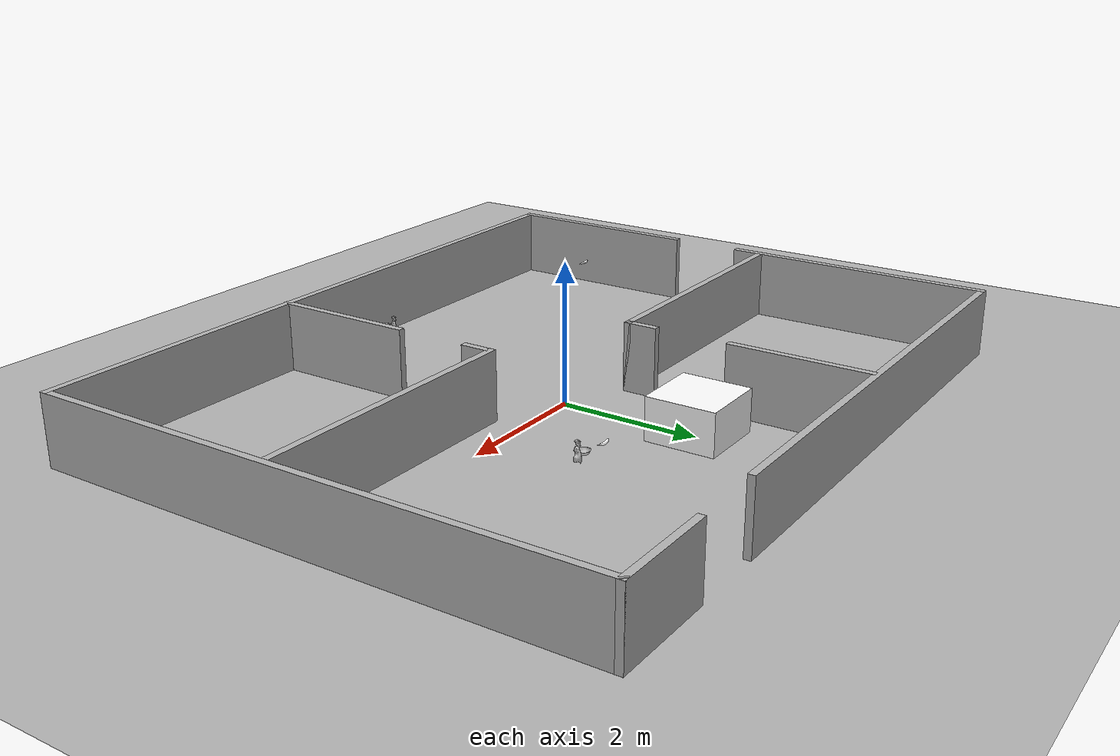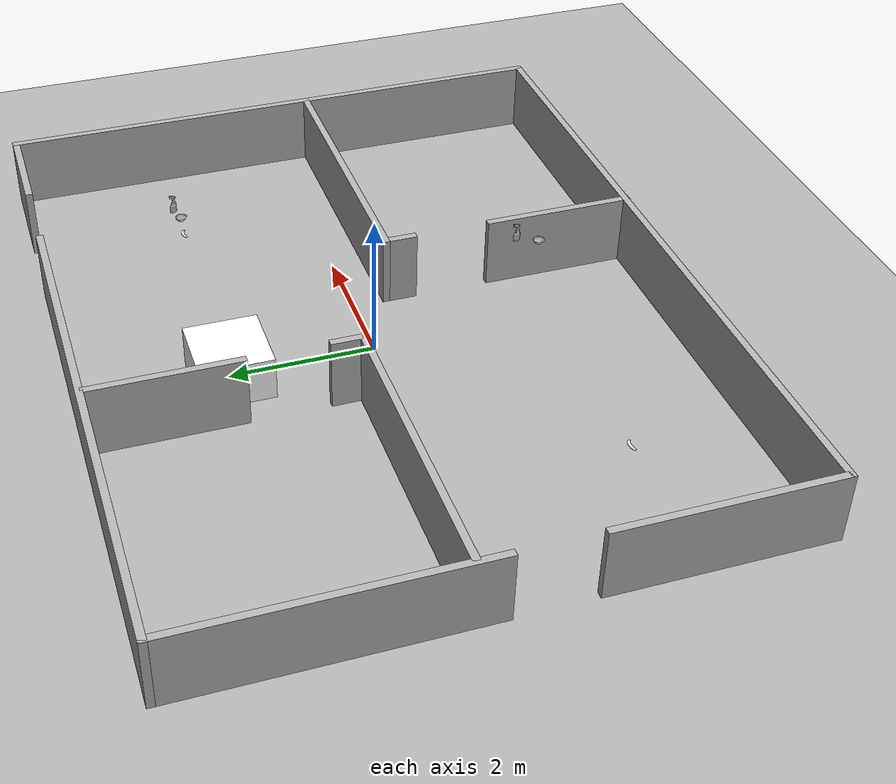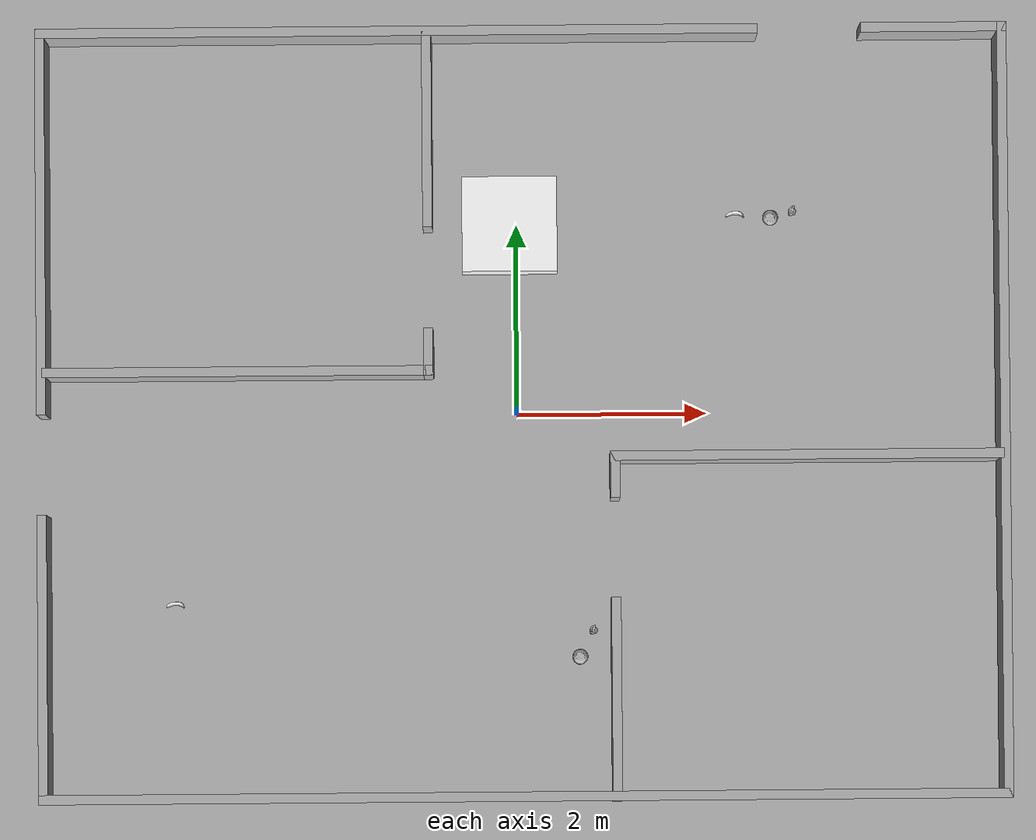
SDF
<sdf version="1.8">
 <world name="robocup_home_official">
  <physics name="1ms" type="ignored">
   <max_step_size>0.001</max_step_size>
   <real_time_factor>1.0</real_time_factor>
  </physics>
  <plugin filename="ignition-gazebo-physics-system" name="gz::sim::systems::Physics"/>
  <plugin filename="ignition-gazebo-user-commands-system" name="gz::sim::systems::UserCommands"/>
  <plugin filename="ignition-gazebo-scene-broadcaster-system" name="gz::sim::systems::SceneBroadcaster"/>
  <plugin filename="ignition-gazebo-sensors-system" name="gz::sim::systems::Sensors">
   <render_engine>ogre2</render_engine>
  </plugin>
  <gravity>0 0 -9.81</gravity>
  <scene>
   <ambient>0.4 0.4 0.4 1</ambient>
   <background>0.92 0.92 0.92 1</background>
   <shadows>true</shadows>
  </scene>
  <light name="sun" type="directional">
   <pose>0 0 8 0 0 0</pose>
   <diffuse>0.7 0.7 0.7 1</diffuse>
   <specular>0.2 0.2 0.2 1</specular>
   <direction>-0.4 0.2 -1</direction>
  </light>
  <model name="ground_plane">
   <static>true</static>
   <link name="link">
    <collision name="collision">
     <geometry><plane><normal>0 0 1</normal><size>100 100</size></plane></geometry>
     <surface><friction><ode><mu>100</mu><mu2>50</mu2></ode></friction></surface>
    </collision>
    <visual name="visual">
     <cast_shadows>false</cast_shadows>
     <geometry><plane><normal>0 0 1</normal><size>100 100</size></plane></geometry>
     <material>
      <ambient>0.3 0.3 0.3 1</ambient>
      <diffuse>0.7 0.7 0.7 1</diffuse>
      <specular>0.01 0.01 0.01 1</specular>
     </material>
    </visual>
   </link>
  </model>
  <model name="RoboCup_Home">
   <static>true</static>
   <pose>0.0595 -0.023998 0 0 0 0</pose>
   <link name="Wall_10">
    <pose>5.0505 0.004498 0 0 0 1.5708</pose>
    <collision name="Wall_10_Collision">
     <pose>0 0 0.5 0 0 0</pose>
     <geometry><box><size>8.139 0.1 1</size></box></geometry>
    </collision>
    <visual name="Wall_10_Visual">
     <pose>0 0 0.5 0 0 0</pose>
     <geometry><box><size>8.139 0.1 1</size></box></geometry>
     <material>
      <ambient>0.3 0.3 0.3 1</ambient>
      <diffuse>0.7 0.7 0.7 1</diffuse>
      <specular>0.01 0.01 0.01 1</specular>
     </material>
    </visual>
   </link>
   <link name="Wall_16">
    <pose>-5.0505 -2.5495 0 0 0 1.5708</pose>
    <collision name="Wall_16_Collision">
     <pose>0 0 0.5 0 0 0</pose>
     <geometry><box><size>3.03123 0.1 1</size></box></geometry>
    </collision>
    <visual name="Wall_16_Visual">
     <pose>0 0 0.5 0 0 0</pose>
     <geometry><box><size>3.03123 0.1 1</size></box></geometry>
     <material>
      <ambient>0.3 0.3 0.3 1</ambient>
      <diffuse>0.7 0.7 0.7 1</diffuse>
      <specular>0.01 0.01 0.01 1</specular>
     </material>
    </visual>
   </link>
   <link name="Wall_18">
    <pose>-5.0505 2.045 0 0 0 -1.5708</pose>
    <collision name="Wall_18_Collision">
     <pose>0 0 0.5 0 0 0</pose>
     <geometry><box><size>4.05777 0.1 1</size></box></geometry>
    </collision>
    <visual name="Wall_18_Visual">
     <pose>0 0 0.5 0 0 0</pose>
     <geometry><box><size>4.05777 0.1 1</size></box></geometry>
     <material>
      <ambient>0.3 0.3 0.3 1</ambient>
      <diffuse>0.7 0.7 0.7 1</diffuse>
      <specular>0.01 0.01 0.01 1</specular>
     </material>
    </visual>
   </link>
   <link name="Wall_20">
    <pose>-1.305 4.024 0 0 0 0</pose>
    <collision name="Wall_20_Collision">
     <pose>0 0 0.5 0 0 0</pose>
     <geometry><box><size>7.591 0.1 1</size></box></geometry>
    </collision>
    <visual name="Wall_20_Visual">
     <pose>0 0 0.5 0 0 0</pose>
     <geometry><box><size>7.591 0.1 1</size></box></geometry>
     <material>
      <ambient>0.3 0.3 0.3 1</ambient>
      <diffuse>0.7 0.7 0.7 1</diffuse>
      <specular>0.01 0.01 0.01 1</specular>
     </material>
    </visual>
   </link>
   <link name="Wall_23">
    <pose>4.3355 4.024 0 0 0 3.14159</pose>
    <collision name="Wall_23_Collision">
     <pose>0 0 0.5 0 0 0</pose>
     <geometry><box><size>1.53 0.1 1</size></box></geometry>
    </collision>
    <visual name="Wall_23_Visual">
     <pose>0 0 0.5 0 0 0</pose>
     <geometry><box><size>1.53 0.1 1</size></box></geometry>
     <material>
      <ambient>0.3 0.3 0.3 1</ambient>
      <diffuse>0.7 0.7 0.7 1</diffuse>
      <specular>0.01 0.01 0.01 1</specular>
     </material>
    </visual>
   </link>
   <link name="Wall_25">
    <pose>-2.991 0.456998 0 0 0 0</pose>
    <collision name="Wall_25_Collision">
     <pose>0 0 0.5 0 0 0</pose>
     <geometry><box><size>4.103 0.1 1</size></box></geometry>
    </collision>
    <visual name="Wall_25_Visual">
     <pose>0 0 0.5 0 0 0</pose>
     <geometry><box><size>4.103 0.1 1</size></box></geometry>
     <material>
      <ambient>0.3 0.3 0.3 1</ambient>
      <diffuse>0.7 0.7 0.7 1</diffuse>
      <specular>0.01 0.01 0.01 1</specular>
     </material>
    </visual>
   </link>
   <link name="Wall_26">
    <pose>-0.9895 0.652498 0 0 0 1.5708</pose>
    <collision name="Wall_26_Collision">
     <pose>0 0 0.5 0 0 0</pose>
     <geometry><box><size>0.491228 0.1 1</size></box></geometry>
    </collision>
    <visual name="Wall_26_Visual">
     <pose>0 0 0.5 0 0 0</pose>
     <geometry><box><size>0.491228 0.1 1</size></box></geometry>
     <material>
      <ambient>0.3 0.3 0.3 1</ambient>
      <diffuse>0.7 0.7 0.7 1</diffuse>
      <specular>0.01 0.01 0.01 1</specular>
     </material>
    </visual>
   </link>
   <link name="Wall_28">
    <pose>-0.9895 2.9875 0 0 0 -1.5708</pose>
    <collision name="Wall_28_Collision">
     <pose>0 0 0.5 0 0 0</pose>
     <geometry><box><size>2.0553 0.1 1</size></box></geometry>
    </collision>
    <visual name="Wall_28_Visual">
     <pose>0 0 0.5 0 0 0</pose>
     <geometry><box><size>2.0553 0.1 1</size></box></geometry>
     <material>
      <ambient>0.3 0.3 0.3 1</ambient>
      <diffuse>0.7 0.7 0.7 1</diffuse>
      <specular>0.01 0.01 0.01 1</specular>
     </material>
    </visual>
   </link>
   <link name="Wall_30">
    <pose>2.975 -0.456001 0 0 0 3.14159</pose>
    <collision name="Wall_30_Collision">
     <pose>0 0 0.5 0 0 0</pose>
     <geometry><box><size>4.129 0.1 1</size></box></geometry>
    </collision>
    <visual name="Wall_30_Visual">
     <pose>0 0 0.5 0 0 0</pose>
     <geometry><box><size>4.129 0.1 1</size></box></geometry>
     <material>
      <ambient>0.3 0.3 0.3 1</ambient>
      <diffuse>0.7 0.7 0.7 1</diffuse>
      <specular>0.01 0.01 0.01 1</specular>
     </material>
    </visual>
   </link>
   <link name="Wall_31">
    <pose>0.9605 -0.651002 0 0 0 -1.5708</pose>
    <collision name="Wall_31_Collision">
     <pose>0 0 0.5 0 0 0</pose>
     <geometry><box><size>0.49 0.1 1</size></box></geometry>
    </collision>
    <visual name="Wall_31_Visual">
     <pose>0 0 0.5 0 0 0</pose>
     <geometry><box><size>0.49 0.1 1</size></box></geometry>
     <material>
      <ambient>0.3 0.3 0.3 1</ambient>
      <diffuse>0.7 0.7 0.7 1</diffuse>
      <specular>0.01 0.01 0.01 1</specular>
     </material>
    </visual>
   </link>
   <link name="Wall_33">
    <pose>0.9605 -3.005 0 0 0 1.5708</pose>
    <collision name="Wall_33_Collision">
     <pose>0 0 0.5 0 0 0</pose>
     <geometry><box><size>2.138 0.1 1</size></box></geometry>
    </collision>
    <visual name="Wall_33_Visual">
     <pose>0 0 0.5 0 0 0</pose>
     <geometry><box><size>2.138 0.1 1</size></box></geometry>
     <material>
      <ambient>0.3 0.3 0.3 1</ambient>
      <diffuse>0.7 0.7 0.7 1</diffuse>
      <specular>0.01 0.01 0.01 1</specular>
     </material>
    </visual>
   </link>
   <link name="Wall_6">
    <pose>0 -4.015 0 0 0 0</pose>
    <collision name="Wall_6_Collision">
     <pose>0 0 0.5 0 0 0</pose>
     <geometry><box><size>10.2 0.1 1</size></box></geometry>
    </collision>
    <visual name="Wall_6_Visual">
     <pose>0 0 0.5 0 0 0</pose>
     <geometry><box><size>10.2 0.1 1</size></box></geometry>
     <material>
      <ambient>0.3 0.3 0.3 1</ambient>
      <diffuse>0.7 0.7 0.7 1</diffuse>
      <specular>0.01 0.01 0.01 1</specular>
     </material>
    </visual>
   </link>
  </model>
  <include><uri>model://bowl</uri><name>bowl</name><pose>2.6716 2.015 0.78 0 0 0</pose></include>
  <include><uri>model://windex_bottle</uri><name>windex_bottle</name><pose>2.9 2.08 0.78 0 0 0</pose></include>
  <include><uri>model://banana</uri><name>banana</name><pose>2.3 2.06 0.78 0 0 0</pose></include>
  <include><uri>model://banana</uri><name>banana_0</name><pose>-3.6 -2 0.78 0 0 0</pose></include>
  <include><uri>model://bowl</uri><name>bowl_0</name><pose>0.64 -2.58 0.78 0 0 0</pose></include>
  <include>
   <uri>model://windex_bottle</uri>
   <name>windex_bottle_0</name>
   <pose>0.78 -2.3 0.78 0 0 0</pose>
  </include>
  <model name="white_block">
   <static>true</static>
   <pose>-0.07 1.99 0.10 0 0 0</pose>
   <link name="link">
    <collision name="collision"><geometry><box><size>1.0 1.0 1.0</size></box></geometry></collision>
    <visual name="visual">
     <geometry><box><size>1.0 1.0 1.0</size></box></geometry>
     <material><ambient>1 1 1 1</ambient><diffuse>1 1 1 1</diffuse><specular>0.1 0.1 0.1 1</specular></material>
    </visual>
   </link>
  </model>
 </world>
</sdf>

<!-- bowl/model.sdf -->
<sdf version="1.6">
  <model name="bowl">
    <link name="link">
      <inertial>
        <!--
          保留资源原有质量。惯性按视觉网格的轴对称包络近似计算：
          半径 0.08066 m、高度 0.05501 m，质心位于高度中点。
          这里不用低面数 collision 网格直接积分，因为其不对称离散会
          产生约 20 mm 的虚假横向质心偏移，不符合碗的轴对称外形。
        -->
        <mass>1.131</mass>
        <inertia>
          <ixx>0.002124632</ixx>
          <ixy>0.0</ixy>
          <ixz>0.0</ixz>
          <iyy>0.002124632</iyy>
          <iyz>0.0</iyz>
          <izz>0.003678865</izz>
        </inertia>
        <pose>0 0 0.0275045 0 0 0</pose>
      </inertial>
      <collision name="collision">
        <pose>0 0 0 0 0 0</pose>
        <geometry>
          <mesh>
            <uri>model://bowl/meshes/collision.dae</uri>
          </mesh>
        </geometry>
      </collision>
      <visual name="visual">
        <pose>0 0 0 0 0 0</pose>
        <geometry>
          <mesh>
            <uri>model://bowl/meshes/textured.dae</uri>
          </mesh>
        </geometry>
      </visual>
    </link>
  </model>
</sdf>

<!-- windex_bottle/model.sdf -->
<sdf version="1.6">
  <model name="windex_bottle">
    <link name="link">
      <inertial>
        <mass>1.022</mass>
      </inertial>
      <collision name="collision">
        <pose>0 0 0.135 0 0 0</pose>
        <geometry>
          <box>
            <size>0.080 0.105 0.270</size>
          </box>
        </geometry>
      </collision>
      <visual name="visual">
        <!-- DAE 原点偏在瓶身一侧；将网格中心对齐简化 box collision。 -->
        <pose>-0.018286525 -0.011927990 0.000750500 0 0 0</pose>
        <geometry>
          <mesh>
            <uri>model://windex_bottle/meshes/textured.dae</uri>
          </mesh>
        </geometry>
      </visual>
    </link>
  </model>
</sdf>

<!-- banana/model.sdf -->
<sdf version="1.6">
  <model name="banana">
    <link name="link">
      <inertial>
        <mass>1.131</mass>
        <inertia>
          <ixx>0.006288831</ixx>
          <ixy>0.0</ixy>
          <ixz>0.0</ixz>
          <iyy>0.006795802</iyy>
          <iyz>0.0</iyz>
          <izz>0.001303383</izz>
        </inertia>
        <pose>0 0 0 0 0 0</pose>
      </inertial>
      <collision name="collision">
        <geometry>
          <mesh>
            <uri>model://banana/meshes/collision.dae</uri>
          </mesh>
        </geometry>
      </collision>
      <visual name="visual">
        <geometry>
          <mesh>
            <uri>model://banana/meshes/textured.dae</uri>
          </mesh>
        </geometry>
        <material>
          <ambient>1 1 1 1</ambient>
          <diffuse>1 1 1 1</diffuse>
          <specular>0 0 0 1</specular>
          <pbr>
            <metal>
              <albedo_map>model://banana/materials/textures/banana_texture_map.png</albedo_map>
              <metalness>0</metalness>
              <roughness>0.8</roughness>
            </metal>
          </pbr>
        </material>
      </visual>
    </link>
  </model>
</sdf>
